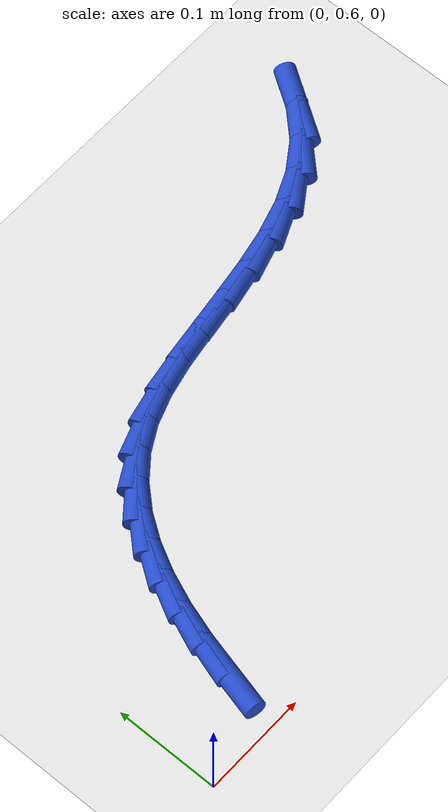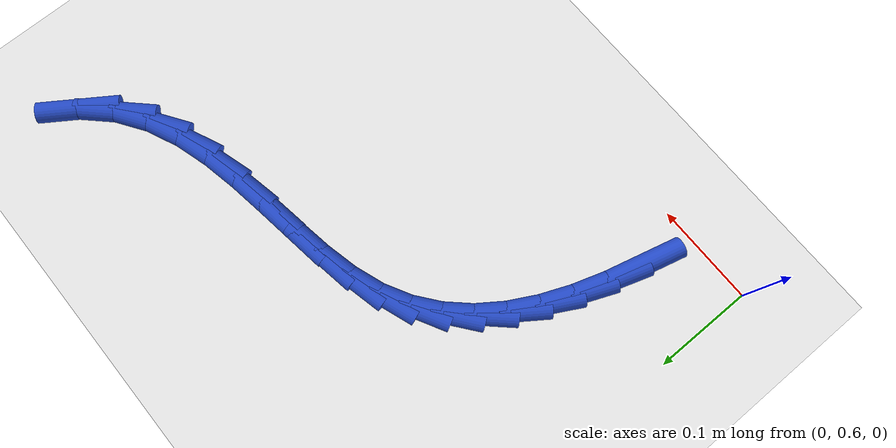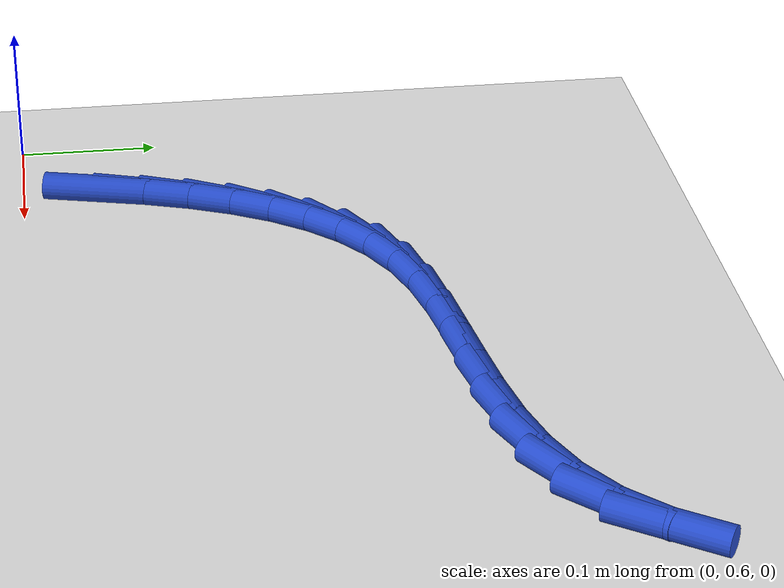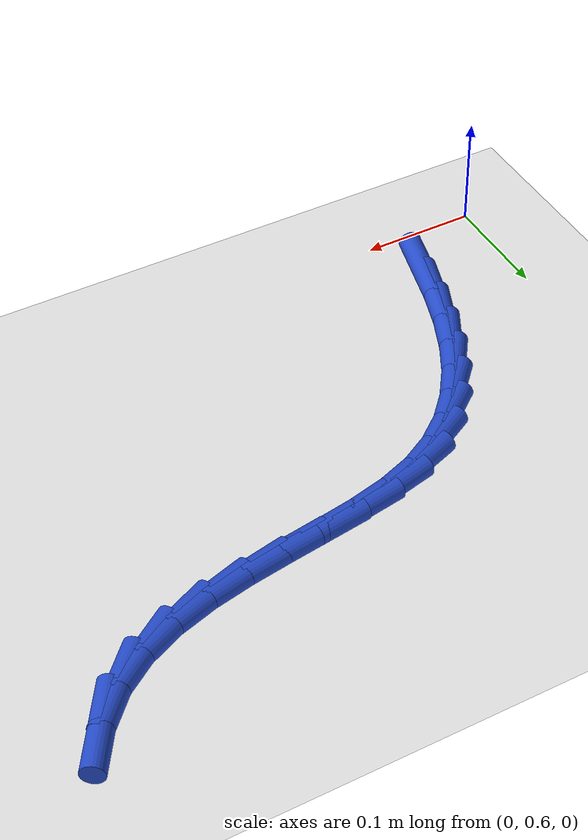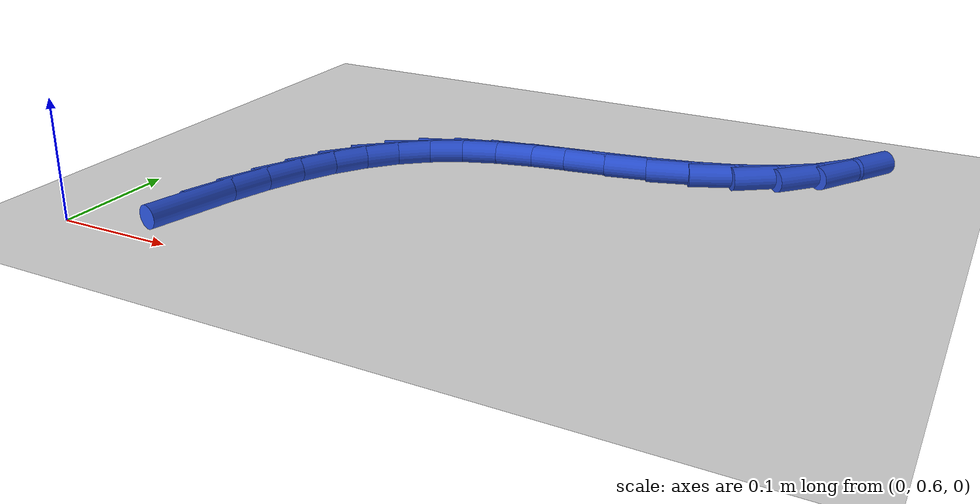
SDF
<sdf version="1.6">
 <world name="default">
  <model name="ground_plane">
   <static>1</static>
   <link name="link">
    <collision name="collision">
     <geometry><plane><normal>0 0 1</normal><size>100 100</size></plane></geometry>
     <surface><friction><ode><mu>100</mu><mu2>50</mu2></ode></friction></surface>
    </collision>
    <visual name="visual">
     <cast_shadows>0</cast_shadows>
     <geometry><plane><normal>0 0 1</normal><size>100 100</size></plane></geometry>
     <material>
      <script><uri>file://media/materials/scripts/gazebo.material</uri><name>Gazebo/WhiteGlow</name></script>
     </material>
    </visual>
   </link>
  </model>
  <model name="line">
   <link name="link_18">
    <pose>0.07907321247201582 0.6549674355768937 0.01 0 1.57 1.3244653415523293</pose>
    <collision name="collision">
     <geometry><cylinder><radius>0.01</radius><length>0.08</length></cylinder></geometry>
    </collision>
    <visual name="visual">
     <material>
      <script><name>Gazebo/Blue</name><uri>file://media/materials/scripts/gazebo.material</uri></script>
     </material>
     <geometry><cylinder><radius>0.01</radius><length>0.08</length></cylinder></geometry>
    </visual>
   </link>
   <link name="link_19">
    <pose>0.08773087366398699 0.6894001159765711 0.01 0 1.57 1.2601443776748615</pose>
    <collision name="collision">
     <geometry><cylinder><radius>0.01</radius><length>0.08</length></cylinder></geometry>
    </collision>
    <visual name="visual">
     <material>
      <script><name>Gazebo/Blue</name><uri>file://media/materials/scripts/gazebo.material</uri></script>
     </material>
     <geometry><cylinder><radius>0.01</radius><length>0.08</length></cylinder></geometry>
    </visual>
   </link>
   <link name="link_20">
    <pose>0.09815900575334251 0.7218818034098867 0.01 0 1.57 1.1804323501548057</pose>
    <collision name="collision">
     <geometry><cylinder><radius>0.01</radius><length>0.08</length></cylinder></geometry>
    </collision>
    <visual name="visual">
     <material>
      <script><name>Gazebo/Blue</name><uri>file://media/materials/scripts/gazebo.material</uri></script>
     </material>
     <geometry><cylinder><radius>0.01</radius><length>0.08</length></cylinder></geometry>
    </visual>
   </link>
   <link name="link_21">
    <pose>0.11059759608332205 0.7521106761851886 0.01 0 1.57 1.0828260451746954</pose>
    <collision name="collision">
     <geometry><cylinder><radius>0.01</radius><length>0.08</length></cylinder></geometry>
    </collision>
    <visual name="visual">
     <material>
      <script><name>Gazebo/Blue</name><uri>file://media/materials/scripts/gazebo.material</uri></script>
     </material>
     <geometry><cylinder><radius>0.01</radius><length>0.08</length></cylinder></geometry>
    </visual>
   </link>
   <link name="link_22">
    <pose>0.1252866319971652 0.779784912610824 0.01 0 1.57 0.9653080502679429</pose>
    <collision name="collision">
     <geometry><cylinder><radius>0.01</radius><length>0.08</length></cylinder></geometry>
    </collision>
    <visual name="visual">
     <material>
      <script><name>Gazebo/Blue</name><uri>file://media/materials/scripts/gazebo.material</uri></script>
     </material>
     <geometry><cylinder><radius>0.01</radius><length>0.08</length></cylinder></geometry>
    </visual>
   </link>
   <link name="link_23">
    <pose>0.1424661008381117 0.8046026909951417 0.01 0 1.57 0.8274622302756662</pose>
    <collision name="collision">
     <geometry><cylinder><radius>0.01</radius><length>0.08</length></cylinder></geometry>
    </collision>
    <visual name="visual">
     <material>
      <script><name>Gazebo/Blue</name><uri>file://media/materials/scripts/gazebo.material</uri></script>
     </material>
     <geometry><cylinder><radius>0.01</radius><length>0.08</length></cylinder></geometry>
    </visual>
   </link>
   <link name="link_24">
    <pose>0.16237598994940114 0.826262189646489 0.01 0 1.57 0.6719407179027711</pose>
    <collision name="collision">
     <geometry><cylinder><radius>0.01</radius><length>0.08</length></cylinder></geometry>
    </collision>
    <visual name="visual">
     <material>
      <script><name>Gazebo/Blue</name><uri>file://media/materials/scripts/gazebo.material</uri></script>
     </material>
     <geometry><cylinder><radius>0.01</radius><length>0.08</length></cylinder></geometry>
    </visual>
   </link>
   <link name="link_25">
    <pose>0.18525628667427319 0.8444615868732144 0.01 0 1.57 0.5054171204110706</pose>
    <collision name="collision">
     <geometry><cylinder><radius>0.01</radius><length>0.08</length></cylinder></geometry>
    </collision>
    <visual name="visual">
     <material>
      <script><name>Gazebo/Blue</name><uri>file://media/materials/scripts/gazebo.material</uri></script>
     </material>
     <geometry><cylinder><radius>0.01</radius><length>0.08</length></cylinder></geometry>
    </visual>
   </link>
   <link name="link_26">
    <pose>0.21134697835596758 0.8588990609836653 0.01 0 1.57 0.3440407389144049</pose>
    <collision name="collision">
     <geometry><cylinder><radius>0.01</radius><length>0.08</length></cylinder></geometry>
    </collision>
    <visual name="visual">
     <material>
      <script><name>Gazebo/Blue</name><uri>file://media/materials/scripts/gazebo.material</uri></script>
     </material>
     <geometry><cylinder><radius>0.01</radius><length>0.08</length></cylinder></geometry>
    </visual>
   </link>
   <link name="link_27">
    <pose>0.2407686229127443 0.869440535133381 0.01 0 1.57 0.2285616109547819</pose>
    <collision name="collision">
     <geometry><cylinder><radius>0.01</radius><length>0.08</length></cylinder></geometry>
    </collision>
    <visual name="visual">
     <material>
      <script><name>Gazebo/Blue</name><uri>file://media/materials/scripts/gazebo.material</uri></script>
     </material>
     <geometry><cylinder><radius>0.01</radius><length>0.08</length></cylinder></geometry>
    </visual>
   </link>
   <link name="link_28">
    <pose>0.27294803977817456 0.8769263243090983 0.01 0 1.57 0.16331307696092154</pose>
    <collision name="collision">
     <geometry><cylinder><radius>0.01</radius><length>0.08</length></cylinder></geometry>
    </collision>
    <visual name="visual">
     <material>
      <script><name>Gazebo/Blue</name><uri>file://media/materials/scripts/gazebo.material</uri></script>
     </material>
     <geometry><cylinder><radius>0.01</radius><length>0.08</length></cylinder></geometry>
    </visual>
   </link>
   <link name="link_29">
    <pose>0.3070621940663292 0.882547676901544 0.01 0 1.57 0.13957083259724673</pose>
    <collision name="collision">
     <geometry><cylinder><radius>0.01</radius><length>0.08</length></cylinder></geometry>
    </collision>
    <visual name="visual">
     <material>
      <script><name>Gazebo/Blue</name><uri>file://media/materials/scripts/gazebo.material</uri></script>
     </material>
     <geometry><cylinder><radius>0.01</radius><length>0.08</length></cylinder></geometry>
    </visual>
   </link>
   <link name="link_30">
    <pose>0.3422877188505929 0.8874963076698804 0.01 0 1.57 0.1527594642650867</pose>
    <collision name="collision">
     <geometry><cylinder><radius>0.01</radius><length>0.08</length></cylinder></geometry>
    </collision>
    <visual name="visual">
     <material>
      <script><name>Gazebo/Blue</name><uri>file://media/materials/scripts/gazebo.material</uri></script>
     </material>
     <geometry><cylinder><radius>0.01</radius><length>0.08</length></cylinder></geometry>
    </visual>
   </link>
   <link name="link_31">
    <pose>0.3778012472043501 0.8929639313732707 0.01 0 1.57 0.20241279804955686</pose>
    <collision name="collision">
     <geometry><cylinder><radius>0.01</radius><length>0.08</length></cylinder></geometry>
    </collision>
    <visual name="visual">
     <material>
      <script><name>Gazebo/Blue</name><uri>file://media/materials/scripts/gazebo.material</uri></script>
     </material>
     <geometry><cylinder><radius>0.01</radius><length>0.08</length></cylinder></geometry>
    </visual>
   </link>
   <link name="link_32">
    <pose>0.4127794122009857 0.9001422627708784 0.01 0 1.57 0.2913182558403613</pose>
    <collision name="collision">
     <geometry><cylinder><radius>0.01</radius><length>0.08</length></cylinder></geometry>
    </collision>
    <visual name="visual">
     <material>
      <script><name>Gazebo/Blue</name><uri>file://media/materials/scripts/gazebo.material</uri></script>
     </material>
     <geometry><cylinder><radius>0.01</radius><length>0.08</length></cylinder></geometry>
    </visual>
   </link>
   <link name="link_33">
    <pose>0.4463988469138838 0.9102230166218654 0.01 0 1.57 0.4235967110291509</pose>
    <collision name="collision">
     <geometry><cylinder><radius>0.01</radius><length>0.08</length></cylinder></geometry>
    </collision>
    <visual name="visual">
     <material>
      <script><name>Gazebo/Blue</name><uri>file://media/materials/scripts/gazebo.material</uri></script>
     </material>
     <geometry><cylinder><radius>0.01</radius><length>0.08</length></cylinder></geometry>
    </visual>
   </link>
   <link name="link_34">
    <pose>0.47783618441642933 0.9243979076853951 0.01 0 1.57 0.6002264170728235</pose>
    <collision name="collision">
     <geometry><cylinder><radius>0.01</radius><length>0.08</length></cylinder></geometry>
    </collision>
    <visual name="visual">
     <material>
      <script><name>Gazebo/Blue</name><uri>file://media/materials/scripts/gazebo.material</uri></script>
     </material>
     <geometry><cylinder><radius>0.01</radius><length>0.08</length></cylinder></geometry>
    </visual>
   </link>
   <link name="link_35">
    <pose>0.5062680577820068 0.9438586507206308 0.01 0 1.57 0.8090391086718112</pose>
    <collision name="collision">
     <geometry><cylinder><radius>0.01</radius><length>0.08</length></cylinder></geometry>
    </collision>
    <visual name="visual">
     <material>
      <script><name>Gazebo/Blue</name><uri>file://media/materials/scripts/gazebo.material</uri></script>
     </material>
     <geometry><cylinder><radius>0.01</radius><length>0.08</length></cylinder></geometry>
    </visual>
   </link>
   <link name="link_36">
    <pose>0.5309199760902127 0.969704609021901 0.01 0 1.57 0.9880619966832562</pose>
    <collision name="collision">
     <geometry><cylinder><radius>0.01</radius><length>0.08</length></cylinder></geometry>
    </collision>
    <visual name="visual">
     <material>
      <script><name>Gazebo/Blue</name><uri>file://media/materials/scripts/gazebo.material</uri></script>
     </material>
     <geometry><cylinder><radius>0.01</radius><length>0.08</length></cylinder></geometry>
    </visual>
   </link>
  </model>
 </world>
</sdf>
